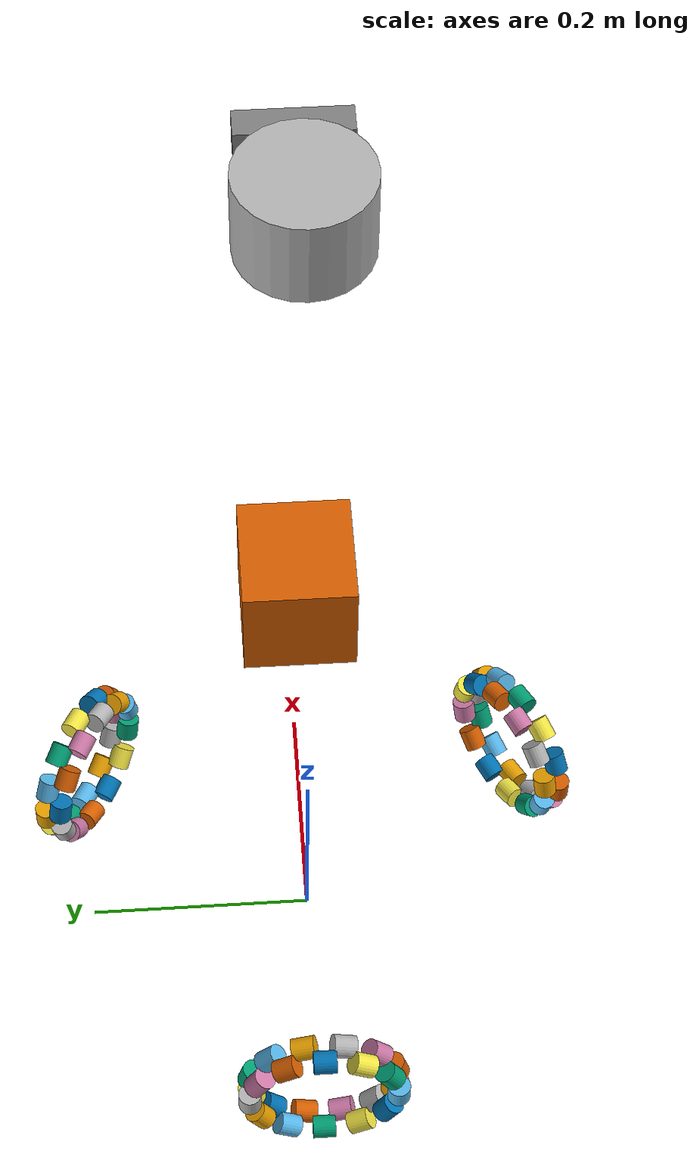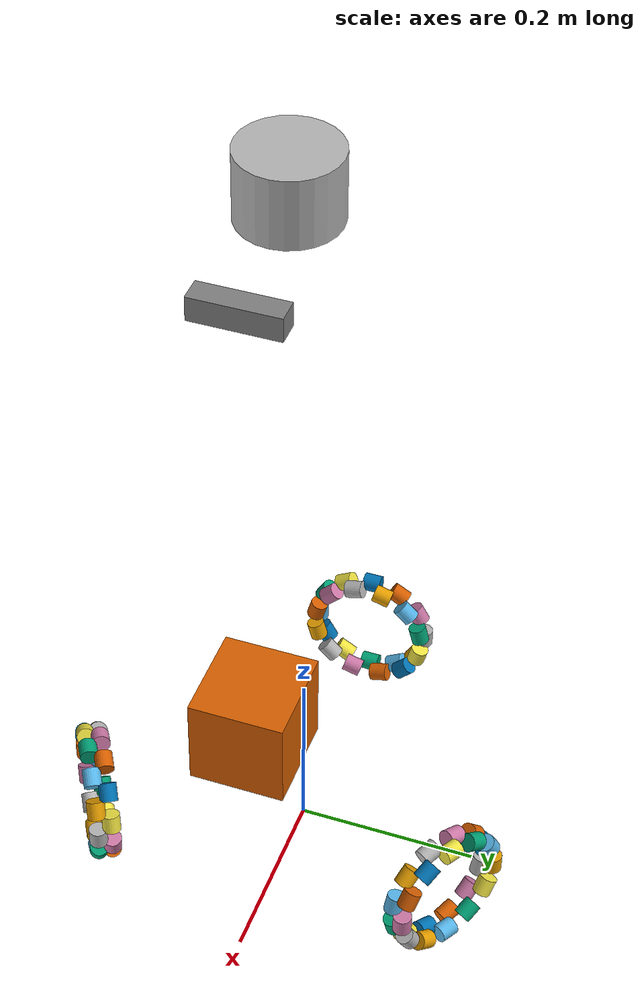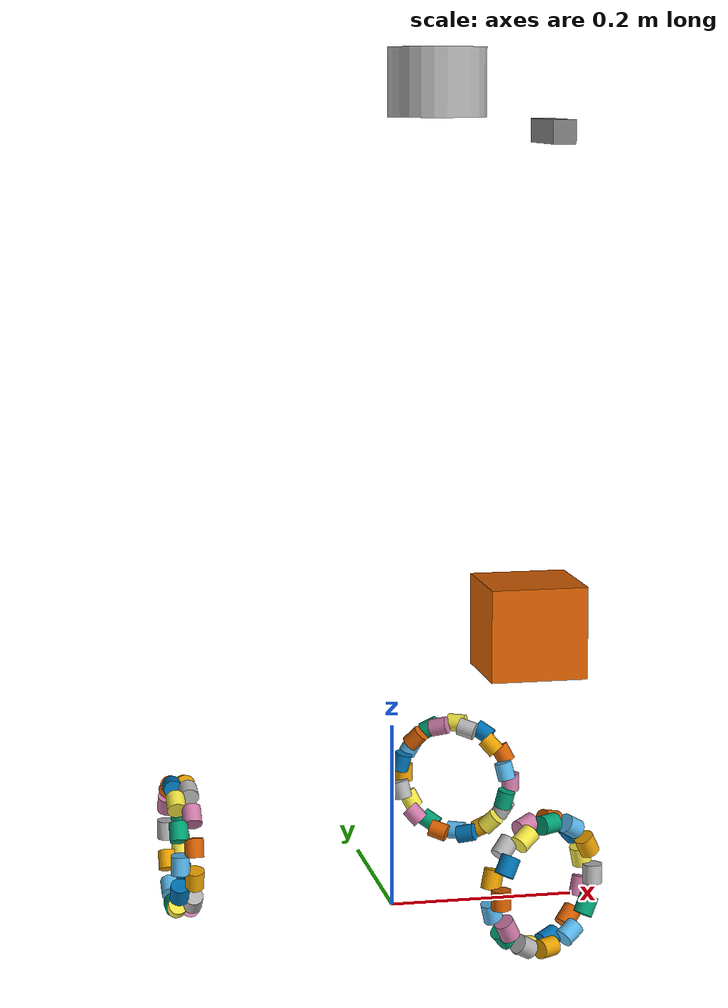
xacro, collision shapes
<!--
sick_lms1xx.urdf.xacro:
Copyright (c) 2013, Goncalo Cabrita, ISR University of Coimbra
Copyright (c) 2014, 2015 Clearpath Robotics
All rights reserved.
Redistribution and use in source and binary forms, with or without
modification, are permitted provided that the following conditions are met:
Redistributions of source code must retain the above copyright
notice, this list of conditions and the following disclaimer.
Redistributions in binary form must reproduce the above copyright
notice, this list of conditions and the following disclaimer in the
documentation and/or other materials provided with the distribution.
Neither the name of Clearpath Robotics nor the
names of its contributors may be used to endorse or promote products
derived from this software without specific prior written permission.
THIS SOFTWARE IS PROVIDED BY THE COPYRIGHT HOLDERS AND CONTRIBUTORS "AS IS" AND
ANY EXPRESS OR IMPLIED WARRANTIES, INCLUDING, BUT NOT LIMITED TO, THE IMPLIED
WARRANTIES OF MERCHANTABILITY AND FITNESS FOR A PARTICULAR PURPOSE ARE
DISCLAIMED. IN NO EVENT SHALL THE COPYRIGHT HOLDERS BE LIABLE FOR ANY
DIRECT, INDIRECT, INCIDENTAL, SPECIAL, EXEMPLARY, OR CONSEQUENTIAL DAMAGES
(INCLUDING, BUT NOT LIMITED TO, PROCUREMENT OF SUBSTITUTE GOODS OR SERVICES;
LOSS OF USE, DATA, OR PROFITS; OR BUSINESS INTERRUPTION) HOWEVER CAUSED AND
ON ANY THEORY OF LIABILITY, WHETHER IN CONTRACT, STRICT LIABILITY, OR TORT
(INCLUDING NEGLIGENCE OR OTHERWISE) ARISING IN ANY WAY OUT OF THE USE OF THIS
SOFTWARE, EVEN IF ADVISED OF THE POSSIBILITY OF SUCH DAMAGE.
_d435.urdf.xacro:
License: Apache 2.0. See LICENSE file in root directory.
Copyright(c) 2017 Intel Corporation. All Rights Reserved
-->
<?xml version="1.0" ?>
<robot
  name="oreo" xmlns:xacro="http://ros.org/wiki/xacro">
  <!-- Imports -->
  <xacro:include filename="$(find oreo_description)/urdf/base/oreo_base.urdf.xacro"/>
  <xacro:include filename="$(find oreo_description)/urdf/body/oreo_body.urdf.xacro"/>

  <!-- base -->
  <xacro:oreo_base link="base_link"/>
  <xacro:oreo_body link="body_link" parent="base_link" joint="body_joint"/>

  <!-- Macro Instances -->
</robot>

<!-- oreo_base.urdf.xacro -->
<robot
  name="oreo" xmlns:xacro="http://ros.org/wiki/xacro">
  <xacro:include filename="$(find oreo_description)/urdf/base/oreo_base.gazebo.xacro"/>
  <xacro:include filename="$(find oreo_description)/urdf/omni_wheel/omni_wheel_complex.xacro"/>
  <xacro:include filename="$(find oreo_description)/urdf/sensor/laser/sick_lms1xx.urdf.xacro"/>

  <xacro:macro name="oreo_base" params="link">

    <link name="base_footprint"/>

    <joint name="dummy" type="fixed">
      <parent link="base_footprint" />
      <child link="base_link" />
    </joint>

    <link
      name="${link}">
      <inertial>
        <origin
          xyz="0 0 0.15161"
          rpy="0 0 0" />
        <mass
          value="11.95558" />
        <inertia
          ixx="0.096859"
          ixy="-2.5179E-05"
          ixz="9.47114E-06"
          iyy="0.0960932"
          iyz="1.8501E-05"
          izz="0.185122" />
      </inertial>
      <visual>
        <origin
          xyz="0 0 0"
          rpy="0 0 0" />
        <geometry>
          <mesh
            filename="package://oreo_description/meshes/oreo_base.dae" />
        </geometry>
      </visual>
    </link>

    <!-- omni wheels -->
    <xacro:omni_wheel name="r" joint_xyz="0.121345 -0.210175705244 0.08" joint_rpy="0 0 -1.0471975512" parent="${link}" wheel_radius="0.065" roller_radius="0.01" roller_length="0.02"/>
    <xacro:omni_wheel name="l" joint_xyz="0.121345 0.210175705244 0.08" joint_rpy="0 0 1.0471975512" parent="${link}" wheel_radius="0.065" roller_radius="0.01" roller_length="0.02"/>
    <xacro:omni_wheel name="b" joint_xyz="-0.24269 0.0 0.08" joint_rpy="0 0 -3.14159265359" parent="${link}" wheel_radius="0.065" roller_radius="0.01" roller_length="0.02"/>

    <!-- laser -->
    <xacro:sick_lms1xx parent="base_link" frame="laser" topic="scan">
      <origin xyz="0.15 0 0.354" rpy="0 0 0" />
    </xacro:sick_lms1xx>

    <!-- gazebo description -->
    <xacro:omni_base_gazebo link="${link}"/>
  </xacro:macro>
</robot>

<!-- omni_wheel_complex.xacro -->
<robot name="oreo_setting" xmlns:xacro="http://ros.org/wiki/xacro">
  <xacro:include filename="$(find oreo_description)/urdf/omni_wheel/roller.xacro"/>
  <xacro:include filename="$(find oreo_description)/urdf/omni_wheel/omni_wheel.gazebo.xacro"/>

  <xacro:macro name="omni_wheel" params="name joint_xyz joint_rpy parent wheel_radius roller_radius roller_length">
    <xacro:property name="link" value="wheel_link_${name}" />
    <xacro:property name="joint" value="wheel_joint_${name}" />

    <link name="${link}">
      <inertial>
        <origin
          xyz="-0.014345 0.0 0.0"
          rpy="0 0 0" />
        <mass
          value="0.44585" />
        <inertia
          ixx="0.0013133"
          ixy="0.0"
          ixz="0.0"
          iyy="0.00066065"
          iyz="0.0"
          izz="0.00066065" />
      </inertial>
      <visual>
        <origin
          xyz="0 0 0"
          rpy="0 0 0" />
        <geometry>
          <mesh
            filename="package://oreo_description/meshes/oreo_wheel.dae" />
        </geometry>
      </visual>
    </link>

    <joint
      name="${joint}"
      type="continuous">
      <origin
        xyz="${joint_xyz}"
        rpy="${joint_rpy}" />
      <parent
        link="${parent}" />
      <child
        link="${link}" />
      <axis
        xyz="1 0 0" />
    </joint>

    <!-- rollers -->
    <xacro:roller name="a_${name}" roller_radius="${roller_radius}" length="${roller_length}" radius="${wheel_radius}" id="0" num="12" parent="wheel_link_${name}" offset_angle="0.5" offset_z="-0.02"/>
    <xacro:roller name="a_${name}" roller_radius="${roller_radius}" length="${roller_length}" radius="${wheel_radius}" id="1" num="12" parent="wheel_link_${name}" offset_angle="0.5" offset_z="-0.02"/>
    <xacro:roller name="a_${name}" roller_radius="${roller_radius}" length="${roller_length}" radius="${wheel_radius}" id="2" num="12" parent="wheel_link_${name}" offset_angle="0.5" offset_z="-0.02"/>
    <xacro:roller name="a_${name}" roller_radius="${roller_radius}" length="${roller_length}" radius="${wheel_radius}" id="3" num="12" parent="wheel_link_${name}" offset_angle="0.5" offset_z="-0.02"/>
    <xacro:roller name="a_${name}" roller_radius="${roller_radius}" length="${roller_length}" radius="${wheel_radius}" id="4" num="12" parent="wheel_link_${name}" offset_angle="0.5" offset_z="-0.02"/>
    <xacro:roller name="a_${name}" roller_radius="${roller_radius}" length="${roller_length}" radius="${wheel_radius}" id="5" num="12" parent="wheel_link_${name}" offset_angle="0.5" offset_z="-0.02"/>
    <xacro:roller name="a_${name}" roller_radius="${roller_radius}" length="${roller_length}" radius="${wheel_radius}" id="6" num="12" parent="wheel_link_${name}" offset_angle="0.5" offset_z="-0.02"/>
    <xacro:roller name="a_${name}" roller_radius="${roller_radius}" length="${roller_length}" radius="${wheel_radius}" id="7" num="12" parent="wheel_link_${name}" offset_angle="0.5" offset_z="-0.02"/>
    <xacro:roller name="a_${name}" roller_radius="${roller_radius}" length="${roller_length}" radius="${wheel_radius}" id="8" num="12" parent="wheel_link_${name}" offset_angle="0.5" offset_z="-0.02"/>
    <xacro:roller name="a_${name}" roller_radius="${roller_radius}" length="${roller_length}" radius="${wheel_radius}" id="9" num="12" parent="wheel_link_${name}" offset_angle="0.5" offset_z="-0.02"/>
    <xacro:roller name="a_${name}" roller_radius="${roller_radius}" length="${roller_length}" radius="${wheel_radius}" id="10" num="12" parent="wheel_link_${name}" offset_angle="0.5" offset_z="-0.02"/>
    <xacro:roller name="a_${name}" roller_radius="${roller_radius}" length="${roller_length}" radius="${wheel_radius}" id="11" num="12" parent="wheel_link_${name}" offset_angle="0.5" offset_z="-0.02"/>

    <xacro:roller name="b_${name}" roller_radius="${roller_radius}" length="${roller_length}" radius="${wheel_radius}" id="0" num="12" parent="wheel_link_${name}" offset_angle="0" offset_z="-0.005"/>
    <xacro:roller name="b_${name}" roller_radius="${roller_radius}" length="${roller_length}" radius="${wheel_radius}" id="1" num="12" parent="wheel_link_${name}" offset_angle="0" offset_z="-0.005"/>
    <xacro:roller name="b_${name}" roller_radius="${roller_radius}" length="${roller_length}" radius="${wheel_radius}" id="2" num="12" parent="wheel_link_${name}" offset_angle="0" offset_z="-0.005"/>
    <xacro:roller name="b_${name}" roller_radius="${roller_radius}" length="${roller_length}" radius="${wheel_radius}" id="3" num="12" parent="wheel_link_${name}" offset_angle="0" offset_z="-0.005"/>
    <xacro:roller name="b_${name}" roller_radius="${roller_radius}" length="${roller_length}" radius="${wheel_radius}" id="4" num="12" parent="wheel_link_${name}" offset_angle="0" offset_z="-0.005"/>
    <xacro:roller name="b_${name}" roller_radius="${roller_radius}" length="${roller_length}" radius="${wheel_radius}" id="5" num="12" parent="wheel_link_${name}" offset_angle="0" offset_z="-0.005"/>
    <xacro:roller name="b_${name}" roller_radius="${roller_radius}" length="${roller_length}" radius="${wheel_radius}" id="6" num="12" parent="wheel_link_${name}" offset_angle="0" offset_z="-0.005"/>
    <xacro:roller name="b_${name}" roller_radius="${roller_radius}" length="${roller_length}" radius="${wheel_radius}" id="7" num="12" parent="wheel_link_${name}" offset_angle="0" offset_z="-0.005"/>
    <xacro:roller name="b_${name}" roller_radius="${roller_radius}" length="${roller_length}" radius="${wheel_radius}" id="8" num="12" parent="wheel_link_${name}" offset_angle="0" offset_z="-0.005"/>
    <xacro:roller name="b_${name}" roller_radius="${roller_radius}" length="${roller_length}" radius="${wheel_radius}" id="9" num="12" parent="wheel_link_${name}" offset_angle="0" offset_z="-0.005"/>
    <xacro:roller name="b_${name}" roller_radius="${roller_radius}" length="${roller_length}" radius="${wheel_radius}" id="10" num="12" parent="wheel_link_${name}" offset_angle="0" offset_z="-0.005"/>
    <xacro:roller name="b_${name}" roller_radius="${roller_radius}" length="${roller_length}" radius="${wheel_radius}" id="11" num="12" parent="wheel_link_${name}" offset_angle="0" offset_z="-0.005"/>

    <!-- gazebo description -->
    <xacro:omni_wheel_gazebo link="${link}" joint="${joint}"/>
  </xacro:macro>
</robot>

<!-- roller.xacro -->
<robot name="roller" xmlns:xacro="http://ros.org/wiki/xacro">
  <xacro:macro name="roller" params="name roller_radius length radius id num parent offset_angle offset_z">
    <xacro:property name="m" value="0.005" />
    <xacro:property name="r" value="${radius}" />
    <xacro:property name="l" value="${length}" />
    <xacro:property name="i" value="${id}" />
    <xacro:property name="n" value="${num}" />
    <xacro:property name="o_z" value="${offset_z}" />
    <xacro:property name="o_a" value="${offset_angle}" />
    <xacro:property name="a" value="${2*pi*i/n + o_a*2*pi/n}" />

    <link name="roller_${name}_${id}">
      <inertial>
        <origin xyz="0.0 0.0 0.0" rpy="0 0 0" />
        <mass value="${m}" />
        <inertia
          ixx="${m*(3*r*r+l*l)/12}"
          ixy="0.0"
          ixz="0.0"
          iyy="${m*(3*r*r+l*l)/12}"
          iyz="0.0"
          izz="${m*r*r/2}" />
      </inertial>
      <collision>
        <origin xyz="0 0 0" rpy="0 0 0"/>
        <geometry>
          <cylinder length="${length}" radius="${roller_radius}"/>
        </geometry>
        <surface>
          <contact>
              <ode>
                <kp>1e15</kp>
                <kd>1e13</kd>
                <mu>1.0</mu>
                <mu2>1.0</mu2>
                <minDepth>0.001</minDepth>
                <fdir1>1 0 0</fdir1>
              </ode>
          </contact>
        </surface>
      </collision>
    </link>

    <joint
      name="roller_joint_${name}_${id}"
      type="continuous">
      <origin xyz="${o_z} ${cos(a)*r} ${sin(a)*r}" rpy="${a} 0 0" />
      <parent link="${parent}" />
      <child link="roller_${name}_${id}" />
      <axis xyz="0 0 1" />
      <dynamics damping="0.0" friction="0.0001"/>
    </joint>
  </xacro:macro>
</robot>

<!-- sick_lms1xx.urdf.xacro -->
<robot xmlns:xacro="http://www.ros.org/wiki/xacro">

  <xacro:macro name="sick_lms1xx" params="parent frame:=laser *origin topic:=scan sample_size:=720 update_rate:=50
               min_angle:=-2.35619 max_angle:=2.35619 min_range:=0.1 max_range:=30.0 robot_namespace:=/" >

    <joint name="laser_joint" type="fixed">
      <axis xyz="0 0 0" />
      <xacro:insert_block name="origin" />
      <parent link="${parent}"/>
      <child link="${frame}"/>
    </joint>
    <link name="${frame}">
      <inertial>
        <mass value="1.1" />
        <origin xyz="0 0 0" />
        <inertia ixx="${0.0833333 * 1.1 * (0.102*0.102 + 0.152*0.152)}" ixy="0.0" ixz="0.0"
          iyy="${0.0833333 * 1.1 * (0.105*0.105 + 0.152*0.152)}" iyz="0.0"
          izz="${0.0833333 * 1.1 * (0.105*0.105 + 0.102*0.102)}" />
      </inertial>
      <visual>
        <origin xyz="0 0 0" rpy="0 0 0" />
        <geometry>
          <!-- Origin of this mesh is the focal point of the LIDAR. -->
          <mesh filename="package://oreo_description/meshes/sensor/sick-lms1xx.dae" />
        </geometry>
      </visual>
      <collision>
        <origin xyz="0 0 -0.05" rpy="0 0 0" />
        <geometry>
          <box size="0.105 0.1 0.1" />
        </geometry>
      </collision>
    </link>

    <gazebo reference="${frame}">
      <sensor type="ray" name="${frame}">
        <pose>0 0 0 0 0 0</pose>
        <visualize>false</visualize>
        <update_rate>${update_rate}</update_rate>
        <ray>
          <scan>
            <horizontal>
              <samples>${sample_size}</samples>
              <resolution>1</resolution>
              <min_angle>${min_angle}</min_angle>
              <max_angle>${max_angle}</max_angle>
            </horizontal>
          </scan>
          <range>
            <min>${min_range}</min>
            <max>${max_range}</max>
            <resolution>0.01</resolution>
          </range>
          <noise>
            <type>gaussian</type>
            <mean>0.0</mean>
            <stddev>0.001</stddev>
          </noise>
        </ray>
        <plugin name="gazebo_ros_laser" filename="libgazebo_ros_laser.so">
          <topicName>${topic}</topicName>
          <frameName>${frame}</frameName>
          <robotNamespace>${robot_namespace}</robotNamespace>
        </plugin>
      </sensor>
    </gazebo>
  </xacro:macro>
</robot>

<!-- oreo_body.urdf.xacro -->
<robot
  name="oreo_body" xmlns:xacro="http://ros.org/wiki/xacro">
  <xacro:include filename="$(find oreo_description)/urdf/body/oreo_body.gazebo.xacro"/>
  <xacro:include filename="$(find oreo_description)/urdf/sensor/camera/_d435.urdf.xacro"/>
  <xacro:include filename="$(find velodyne_description)/urdf/VLP-16.urdf.xacro"/>

  <xacro:macro name="oreo_body" params="link parent joint">
    <link
      name="${link}">
      <inertial>
        <origin
          xyz="0 0 0.21999"
          rpy="0 0 0" />
        <mass
          value="18.5864" />
        <inertia
          ixx="0.145"
          ixy="4.177E-08"
          ixz="0.00481488"
          iyy="0.1230026"
          iyz="3.97404E-07"
          izz="0.173432" />
      </inertial>
      <visual>
        <origin
          xyz="0 0 0"
          rpy="0 0 0" />
        <geometry>
          <mesh
            filename="package://oreo_description/meshes/oreo_body.dae" />
        </geometry>
      </visual>
    </link>
    <joint
      name="${joint}"
      type="fixed">
      <origin
        xyz="-0.0031272 0 0.238"
        rpy="0 0 0" />
      <parent
        link="${parent}" />
      <child
        link="${link}" />
      <axis
        xyz="0 0 0" />
    </joint>

    <!-- VLP-16 -->
    <xacro:arg name="gpu" default="false"/>
    <xacro:property name="gpu" value="$(arg gpu)" />
    <xacro:arg name="organize_cloud" default="false"/>
    <xacro:property name="organize_cloud" value="$(arg organize_cloud)" />
    <xacro:VLP-16 parent="${link}" name="velodyne" topic="/velodyne_points" organize_cloud="${organize_cloud}" hz="10" samples="440" gpu="${gpu}">
      <origin xyz="0.05 0 0.61" rpy="0 0 0" />
    </xacro:VLP-16>

    <!-- realsense -->
    <xacro:sensor_d435 name="realsense" topics_ns="camera" parent="body_link">
      <origin xyz="0.175 0 0.5825" rpy="0 0 0" />
    </xacro:sensor_d435>

    <!-- gazebo description -->
    <xacro:omni_body_gazebo link="${link}"/>
  </xacro:macro>
</robot>

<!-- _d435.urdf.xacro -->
<robot name="sensor_d435" xmlns:xacro="http://ros.org/wiki/xacro">
  <!--File includes-->
  <xacro:include filename="$(find oreo_description)/urdf/sensor/camera/_d435.gazebo.xacro"/>

  <xacro:macro name="sensor_d435" params="name:=camera topics_ns:=camera parent *origin">
    <xacro:property name="M_PI" value="3.1415926535897931" />

    <!-- The following values are approximate, and the camera node
     publishing TF values with actual calibrated camera extrinsic values -->
    <xacro:property name="d435_cam_depth_to_left_ir_offset" value="0.0"/>
    <xacro:property name="d435_cam_depth_to_right_ir_offset" value="-0.050"/>
    <xacro:property name="d435_cam_depth_to_color_offset" value="0.015"/>

    <!-- The following values model the aluminum peripherial case for the
  	D435 camera, with the camera joint represented by the actual
  	peripherial camera tripod mount -->
    <xacro:property name="d435_cam_width" value="0.090"/>
    <xacro:property name="d435_cam_height" value="0.025"/>
    <xacro:property name="d435_cam_depth" value="0.02505"/>
    <xacro:property name="d435_cam_mount_from_center_offset" value="0.0149"/>

    <!-- The following offset is relative the the physical D435 camera peripherial
  	camera tripod mount -->d
    <xacro:property name="d435_cam_depth_px" value="${d435_cam_mount_from_center_offset}"/>
    <xacro:property name="d435_cam_depth_py" value="0.0175"/>
    <xacro:property name="d435_cam_depth_pz" value="${d435_cam_height/2}"/>

    <material name="${name}_aluminum">
	  <color rgba="0.5 0.5 0.5 1"/>
    </material>

    <!-- camera body, with origin at bottom screw mount -->
    <joint name="${name}_joint" type="fixed">
      <xacro:insert_block name="origin" />
      <parent link="${parent}"/>
      <child link="${name}_bottom_screw_frame" />
    </joint>
    <link name="${name}_bottom_screw_frame"/>

    <joint name="${name}_link_joint" type="fixed">
      <origin xyz="0 ${d435_cam_depth_py} ${d435_cam_depth_pz}" rpy="0 0 0"/>
      <parent link="${name}_bottom_screw_frame"/>
      <child link="${name}_link" />
    </joint>

    <link name="${name}_link">
      <visual>
      <origin xyz="${d435_cam_mount_from_center_offset} ${-d435_cam_depth_py} 0" rpy="${M_PI/2} 0 ${M_PI/2}"/>
        <geometry>
          <mesh filename="package://oreo_description/meshes/sensor/d435.dae" />
        </geometry>
        <material name="${name}_aluminum"/>
      </visual>
      <collision>
        <origin xyz="0 ${-d435_cam_depth_py} 0" rpy="0 0 0"/>
        <geometry>
        <box size="${d435_cam_depth} ${d435_cam_width} ${d435_cam_height}"/>
        </geometry>
      </collision>
      <inertial>
        <!-- The following are not reliable values, and should not be used for modeling -->
        <mass value="0.564" />
        <origin xyz="0 0 0" />
        <inertia ixx="0.003881243" ixy="0.0" ixz="0.0" iyy="0.000498940" iyz="0.0" izz="0.003879257" />
      </inertial>
    </link>

    <!-- camera depth joints and links -->
    <joint name="${name}_depth_joint" type="fixed">
      <origin xyz="0 0 0" rpy="0 0 0"/>
      <parent link="${name}_link"/>
      <child link="${name}_depth_frame" />
    </joint>
    <link name="${name}_depth_frame"/>

    <joint name="${name}_depth_optical_joint" type="fixed">
      <origin xyz="0 0 0" rpy="${-M_PI/2} 0 ${-M_PI/2}" />
      <parent link="${name}_depth_frame" />
      <child link="${name}_depth_optical_frame" />
    </joint>
    <link name="${name}_depth_optical_frame"/>

    <!-- camera left IR joints and links -->
    <joint name="${name}_left_ir_joint" type="fixed">
      <origin xyz="0 ${d435_cam_depth_to_left_ir_offset} 0" rpy="0 0 0" />
      <parent link="${name}_depth_frame" />
      <child link="${name}_left_ir_frame" />
    </joint>
    <link name="${name}_left_ir_frame"/>

    <joint name="${name}_left_ir_optical_joint" type="fixed">
      <origin xyz="0 0 0" rpy="${-M_PI/2} 0 ${-M_PI/2}" />
      <parent link="${name}_left_ir_frame" />
      <child link="${name}_left_ir_optical_frame" />
    </joint>
    <link name="${name}_left_ir_optical_frame"/>

    <!-- camera right IR joints and links -->
    <joint name="${name}_right_ir_joint" type="fixed">
      <origin xyz="0 ${d435_cam_depth_to_right_ir_offset} 0" rpy="0 0 0" />
      <parent link="${name}_depth_frame" />
      <child link="${name}_right_ir_frame" />
    </joint>
    <link name="${name}_right_ir_frame"/>

    <joint name="${name}_right_ir_optical_joint" type="fixed">
      <origin xyz="0 0 0" rpy="${-M_PI/2} 0 ${-M_PI/2}" />
      <parent link="${name}_right_ir_frame" />
      <child link="${name}_right_ir_optical_frame" />
    </joint>
    <link name="${name}_right_ir_optical_frame"/>

    <!-- camera color joints and links -->
    <joint name="${name}_color_joint" type="fixed">
      <origin xyz="0 ${d435_cam_depth_to_color_offset} 0" rpy="0 0 0" />
      <parent link="${name}_depth_frame" />
      <child link="${name}_color_frame" />
    </joint>
    <link name="${name}_color_frame"/>

    <joint name="${name}_color_optical_joint" type="fixed">
      <origin xyz="0 0 0" rpy="${-M_PI/2} 0 ${-M_PI/2}" />
      <parent link="${name}_color_frame" />
      <child link="${name}_color_optical_frame" />
    </joint>
    <link name="${name}_color_optical_frame"/>

    <!-- Realsense Gazebo Plugin -->
    <xacro:gazebo_d435 camera_name="${name}" reference_link="${name}_link" topics_ns="${topics_ns}" depth_optical_frame="${name}_depth_optical_frame" color_optical_frame="${name}_color_optical_frame" infrared1_optical_frame="${name}_left_ir_optical_frame" infrared2_optical_frame="${name}_right_ir_optical_frame"/>

  </xacro:macro>
</robot>

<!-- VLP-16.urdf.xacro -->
<robot xmlns:xacro="http://www.ros.org/wiki/xacro" name="VLP-16">
  <xacro:property name="M_PI" value="3.1415926535897931" />
  <xacro:macro name="VLP-16" params="*origin is_sim:=true parent:=base_link name:=velodyne tf_prefix:='' topic:=/velodyne_points organize_cloud:=false hz:=10 lasers:=16 samples:=1875 collision_range:=0.3 min_range:=0.0 max_range:=100.0 noise:=0.008 min_angle:=-${M_PI} max_angle:=${M_PI} gpu:=false">

    <joint name="${name}_base_mount_joint" type="fixed">
      <xacro:insert_block name="origin" />
      <parent link="${parent}"/>
      <child link="${name}_base_link"/>
    </joint>

    <link name="${name}_base_link">
      <inertial>
        <mass value="0.83"/>
        <origin xyz="0 0 0.03585"/>
        <inertia ixx="${(0.83 * (3.0*0.0516*0.0516 + 0.0717*0.0717)) / 12.0}" ixy="0" ixz="0"
          iyy="${(0.83 * (3.0*0.0516*0.0516 + 0.0717*0.0717)) / 12.0}" iyz="0"
          izz="${0.5 * 0.83 * (0.0516*0.0516)}"/>
      </inertial>
      <visual>
        <geometry>
          <mesh filename="package://velodyne_description/meshes/VLP16_base_1.dae" />
        </geometry>
      </visual>
      <visual>
        <geometry>
          <mesh filename="package://velodyne_description/meshes/VLP16_base_2.dae" />
        </geometry>
      </visual>
      <collision>
        <origin rpy="0 0 0" xyz="0 0 0.03585"/>
        <geometry>
          <cylinder radius="0.0516" length="0.0717"/>
        </geometry>
      </collision>
    </link>

    <joint name="${name}_base_scan_joint" type="fixed" >
      <origin xyz="0 0 0.0377" rpy="0 0 0" />
      <parent link="${name}_base_link" />
      <child link="${name}"/>
    </joint>

    <link name="${name}">
      <inertial>
        <mass value="0.01"/>
        <origin xyz="0 0 0"/>
        <inertia ixx="1e-7" ixy="0" ixz="0" iyy="1e-7" iyz="0" izz="1e-7"/>
      </inertial>
      <visual>
        <origin xyz="0 0 -0.0377" />
        <geometry>
          <mesh filename="package://velodyne_description/meshes/VLP16_scan.dae" />
        </geometry>
      </visual>
      <collision>
        <geometry>
          <sphere radius="0"/>
        </geometry>
      </collision>
    </link>

    <!-- Gazebo requires the velodyne_gazebo_plugins package -->
    <xacro:if value="${is_sim}">
        <gazebo reference="${name}">
            <xacro:if value="${gpu}">
                <sensor type="gpu_ray" name="${name}-VLP16">
                <pose>0 0 0 0 0 0</pose>
                <visualize>false</visualize>
                <update_rate>${hz}</update_rate>
                <ray>
                    <scan>
                    <horizontal>
                        <samples>${samples}</samples>
                        <resolution>1</resolution>
                        <min_angle>${min_angle}</min_angle>
                        <max_angle>${max_angle}</max_angle>
                    </horizontal>
                    <vertical>
                        <samples>${lasers}</samples>
                        <resolution>1</resolution>
                        <min_angle>-${15.0*M_PI/180.0}</min_angle>
                        <max_angle> ${15.0*M_PI/180.0}</max_angle>
                    </vertical>
                    </scan>
                    <range>
                    <min>${collision_range}</min>
                    <max>${max_range+1}</max>
                    <resolution>0.001</resolution>
                    </range>
                    <noise>
                    <type>gaussian</type>
                    <mean>0.0</mean>
                    <stddev>0.0</stddev>
                    </noise>
                </ray>
                <plugin name="gazebo_ros_laser_controller" filename="libgazebo_ros_velodyne_laser.so">
                    <ros>
                    <namespace>/${name}</namespace>
                    <remapping>~/out:=${topic}</remapping>
                    </ros>
                    <tf_prefix>${tf_prefix}</tf_prefix>
                    <frame_name>${name}</frame_name>
                    <organize_cloud>${organize_cloud}</organize_cloud>
                    <min_range>${min_range}</min_range>
                    <max_range>${max_range}</max_range>
                    <gaussian_noise>${noise}</gaussian_noise>
                </plugin>
                </sensor>
            </xacro:if>
            <xacro:unless value="${gpu}">
                <sensor type="ray" name="${name}-VLP16">
                <pose>0 0 0 0 0 0</pose>
                <visualize>false</visualize>
                <update_rate>${hz}</update_rate>
                <ray>
                    <scan>
                    <horizontal>
                        <samples>${samples}</samples>
                        <resolution>1</resolution>
                        <min_angle>${min_angle}</min_angle>
                        <max_angle>${max_angle}</max_angle>
                    </horizontal>
                    <vertical>
                        <samples>${lasers}</samples>
                        <resolution>1</resolution>
                        <min_angle>-${15.0*M_PI/180.0}</min_angle>
                        <max_angle> ${15.0*M_PI/180.0}</max_angle>
                    </vertical>
                    </scan>
                    <range>
                    <min>${collision_range}</min>
                    <max>${max_range+1}</max>
                    <resolution>0.001</resolution>
                    </range>
                    <noise>
                    <type>gaussian</type>
                    <mean>0.0</mean>
                    <stddev>0.0</stddev>
                    </noise>
                </ray>
                <plugin name="gazebo_ros_laser_controller" filename="libgazebo_ros_velodyne_laser.so">
                    <ros>
                    <namespace>/${name}</namespace>
                    <remapping>~/out:=${topic}</remapping>
                    </ros>
                    <tf_prefix>${tf_prefix}</tf_prefix>
                    <frame_name>${name}</frame_name>
                    <organize_cloud>${organize_cloud}</organize_cloud>
                    <min_range>${min_range}</min_range>
                    <max_range>${max_range}</max_range>
                    <gaussian_noise>${noise}</gaussian_noise>
                </plugin>
                </sensor>
            </xacro:unless>
        </gazebo>
    </xacro:if>

  </xacro:macro>
</robot>
